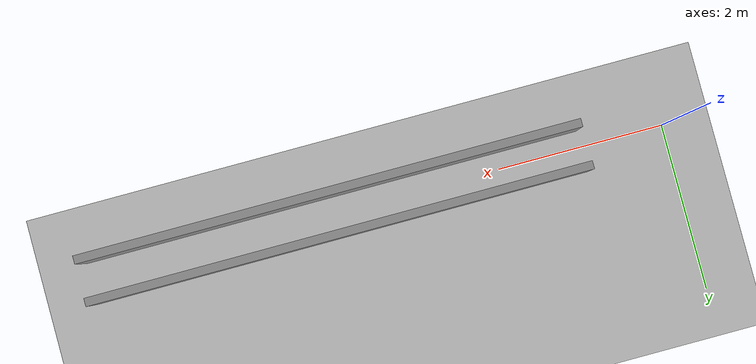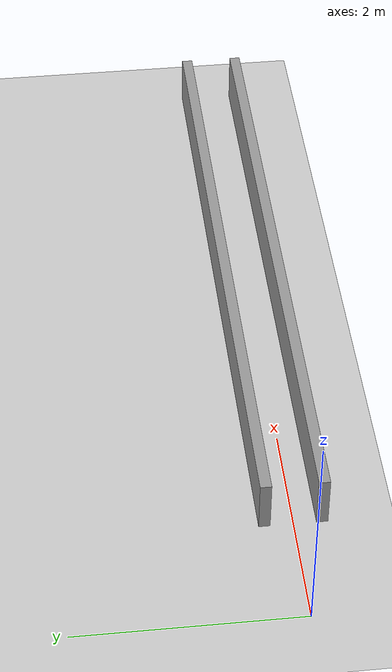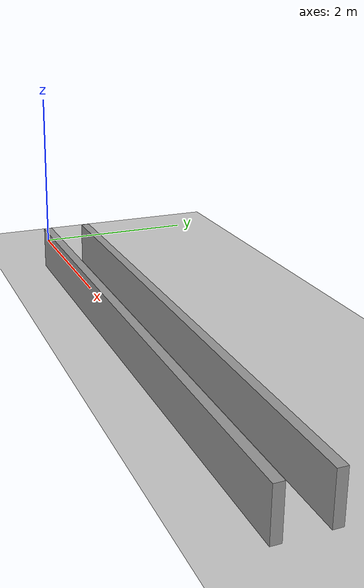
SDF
<?xml version="1.0" ?>
<!-- 由 omni_world.py 自动生成: scene=corridor seed=None -->
<sdf version="1.5">
  <world name="corridor">
    <physics type="ode">
      <type>world</type>
      <max_step_size>0.001</max_step_size>
      <real_time_update_rate>1000</real_time_update_rate>
      <iters>500</iters>
    </physics>
    <include><uri>model://sun</uri></include>
    <include><uri>model://ground_plane</uri></include>
    <model name="wall_l">
      <static>true</static>
      <pose>4.000 0.250 0.250 0.0000 0.0000 0.0000</pose>
      <link name="link">
        <collision name="collision">
          <geometry><box><size>6.000 0.100 0.500</size></box></geometry>
          <surface><friction><ode><mu>1.0</mu><mu2>1.0</mu2></ode></friction></surface>
        </collision>
        <visual name="visual">
          <geometry><box><size>6.000 0.100 0.500</size></box></geometry>
          <material><script><uri>file://media/materials/scripts/gazebo.material</uri>
            <name>Gazebo/Grey</name></script></material>
        </visual>
      </link>
    </model>
    <model name="wall_r">
      <static>true</static>
      <pose>4.000 -0.250 0.250 0.0000 0.0000 0.0000</pose>
      <link name="link">
        <collision name="collision">
          <geometry><box><size>6.000 0.100 0.500</size></box></geometry>
          <surface><friction><ode><mu>1.0</mu><mu2>1.0</mu2></ode></friction></surface>
        </collision>
        <visual name="visual">
          <geometry><box><size>6.000 0.100 0.500</size></box></geometry>
          <material><script><uri>file://media/materials/scripts/gazebo.material</uri>
            <name>Gazebo/Grey</name></script></material>
        </visual>
      </link>
    </model>

  </world>
</sdf>
